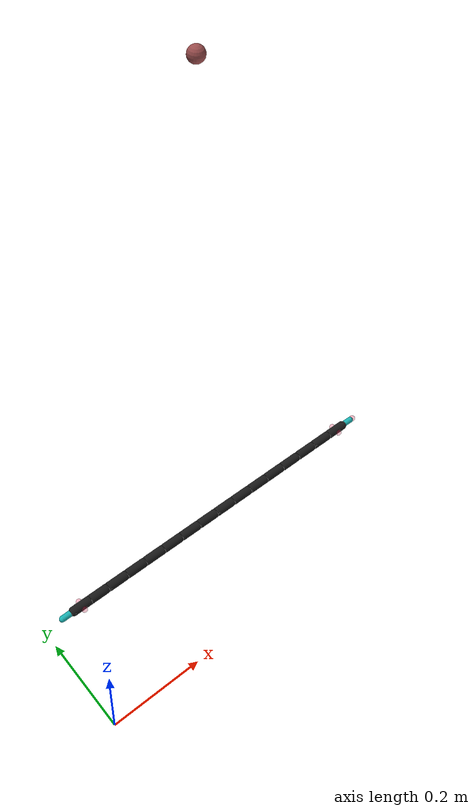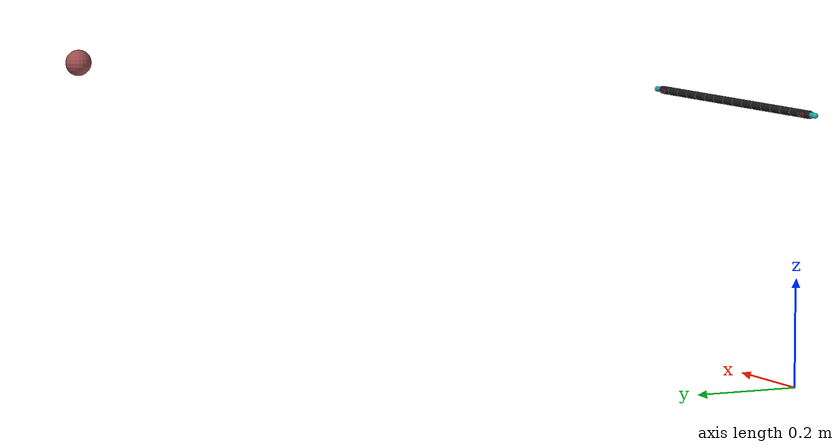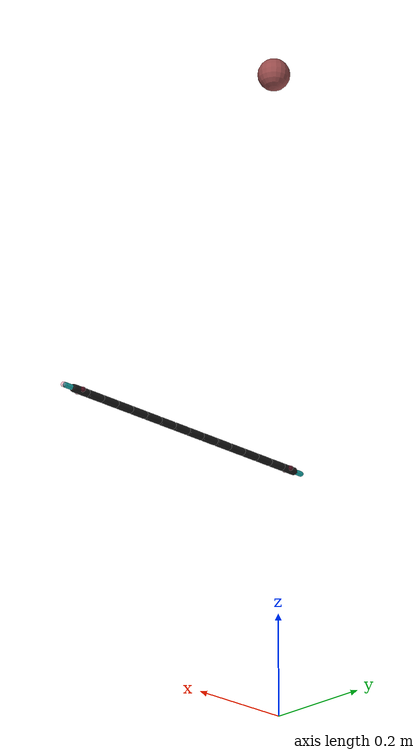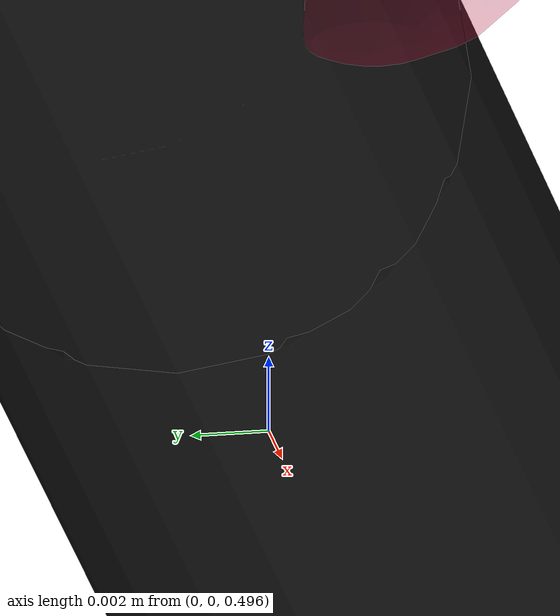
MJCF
<mujoco model="wire_insertion">
    <custom>
        <numeric data="0.4 0.25 0.21 1 0 0 0" name="wire1_initpos" />
        <!-- horizontal-->
        <numeric data="-0.2 -0.7 0.195 1 0 0 0" name="target1_initpos" />
        <!-- vertical-->
    </custom>

    <asset>
        <material name="table_mat" specular="0" shininess="0.5" reflectance="0" rgba="0.93 0.93 0.93 1"/>
        <!-- ceramic table texture and material-->
        <texture file="../textures/ceramic.png" type="cube" name="tex-ceramic"/>
        <material name="table_ceramic" reflectance="0.0" shininess="0.0" specular="0.2" texrepeat="1 1" texture="tex-ceramic" />
        <texture file="../textures/steel-scratched.png" type="cube" name="steel-metal"/>
        <material name="smetal" reflectance="1.0" shininess="1.0" specular="1.0" texrepeat="1 1" texture="steel-metal" texuniform="true"/>
        <texture file="../textures/brass-ambra.png" type="cube" name="brass-metal"/>
        <material name="bmetal"  reflectance="1.0" shininess="1.0" specular="1.0" texrepeat="1 1" texture="brass-metal" texuniform="true"/>
        <mesh file="table_lack_0825/table.stl" name="part4" scale="0.015 0.015 0.02" />
        <texture file="../textures/light-wood.png" name="tex-light-wood" type="2d" />
        <material name="pencil-wood" reflectance="0.5" texrepeat="20 20" texture="tex-light-wood" texuniform="true" />
        <texture file="../textures/red-wood.png" name="tex-red-wood" type="2d" />
        <material name="red-wood" reflectance="0.5" texrepeat="20 20" texture="tex-red-wood" texuniform="true" />
        <texture name="grid" type="2d" builtin="checker" rgb1=".1 .2 .3" rgb2=".2 .3 .4" width="300" height="300" mark="edge" markrgb=".2 .3 .4"/>
        <material name="self" rgba="0.1 0.1 0.1 1"/>
        <material name="self_default" rgba=".7 .5 .3 1"/>
        <material name="self_highlight" rgba="0 .5 .3 1"/>
        <material name="effector" rgba=".7 .4 .2 1"/>
        <material name="effector_default" rgba=".7 .4 .2 1"/>
        <material name="effector_highlight" rgba="0 .5 .3 1"/>
        <material name="decoration" rgba=".3 .5 .7 1"/>
        <material name="eye" rgba="0 .2 1 1"/>
        <material name="target" rgba=".6 .3 .3 1"/>
        <material name="target_default" rgba=".6 .3 .3 1"/>
        <material name="target_highlight" rgba=".6 .3 .3 .4"/>
        <material name="site" rgba=".5 .5 .5 .3"/>
    </asset>

    <default>
        <default class="swimmer">
            <joint type="hinge" pos="0 -0.015 0" axis="0 0 1" damping=".005" limited="true" solreflimit=".05 1" solimplimit="0 .8 .1" armature="1e-6"/>
            <default class="collision">
                <geom type="box" size="0.001 0.015 0.0075" quat="0.707107 0.707107 0 0" rgba="0 0 0 0"/>
            </default>
            <default class="visual">
                <geom type="capsule" size="0.0075" quat="0.707107 0.707107 0 0" fromto="0 -0.015 0 0 0.015 0" material="self"/>
            </default>
            <site size=".005" rgba="0.2941 0.9019 0.0980 0.3" type="sphere"/>
        </default>
        <default class="panda">
            <material specular="0.5" shininess="0.25"/>
            <default class="robot_visual">
                <geom type="mesh" contype="0" conaffinity="0" group="1"/>
            </default>
            <default class="robot_collision">
                <geom type="mesh" group="0"/>
                <default class="fingertip_pad_collision_1">
                <geom type="box" size="0.0085 0.004 0.0085" pos="0 0.0055 0.0445"/>
                </default>
                <default class="fingertip_pad_collision_2">
                <geom type="box" size="0.003 0.002 0.003" pos="0.0055 0.002 0.05"/>
                </default>
                <default class="fingertip_pad_collision_3">
                <geom type="box" size="0.003 0.002 0.003" pos="-0.0055 0.002 0.05"/>
                </default>
                <default class="fingertip_pad_collision_4">
                <geom type="box" size="0.003 0.002 0.0035" pos="0.0055 0.002 0.0395"/>
                </default>
                <default class="fingertip_pad_collision_5">
                <geom type="box" size="0.003 0.002 0.0035" pos="-0.0055 0.002 0.0395"/>
                </default>
            </default>
        </default>

    </default>

     <equality>
        <connect active="false" body1="wire1" body2="target1" anchor="0.10514361 0.19101518 0.10821976" solimp="1 1 0.5" solref="0.01 0.3" />
    </equality>

    <compiler meshdir=""/>
    <size njmax="8000" nconmax="4000"/>

    <worldbody>
        <!-- include a wire -->
           -->

        <!-- Wire -->

        <body name="wire1" pos="0.5 0 .5" quat="0.707107 0 0 0.707107" childclass="swimmer">
            <inertial pos="0.055 0 0" quat="0.707107 0 0.707107 0" mass="0.00274889" diaginertia="2.97797e-07 2.97797e-07 3.43612e-08"/>
            <light name="light_1" diffuse=".8 .8 .8" pos="0 0 1.5"/>
            <geom name="wire1_I1_geom" conaffinity="0" contype="0" pos="0 -0.025 0" quat="0.707107 0.707107 0 0" size="0.005 0.01" rgba="0.1 0.7 0.7 1" group="1" type="capsule"/>--&gt;
            <geom name="noviz_collision_wire1_I1" condim="1" pos="0 -0.025 0" quat="0.707107 0.707107 0 0" size="0.005 0.01" type="capsule" rgba="0 0 0 0" group="0" solref="0.001 1"/>
            <geom name="wire1_G0_geom" class="visual" group="1"/>
            <geom name="noviz_collision_wire1_G0" class="collision" group="0"/>
            <site group="1" name="wire1_ltgt_site0" pos="0.0075 0 0" rgba="0.9019 0.0980 0.2941 0.3" size="0.005 0.005 0.005" type="sphere"/>
            <site group="1" name="wire1_rtgt_site0" pos="-0.0075 0 0" rgba="0.9019 0.0980 0.2941 0.3" size="0.005 0.005 0.005" type="sphere"/>
            <!--site for hole-->
            <site group="0" name="wire-hole,conn_site1" pos="0 -0.04 0" quat="0.707107 0 0.707107 0" rgba="0.9019 0.0980 0.2941 0.3" size="0.005"/>
            <!--site for connection-->
            <site name="wire1_horizontal_radius_site" pos="0.0 0 0" rgba="0.9019 0.0980 0.2941 0.3" size="0.0075"/>
            <site name="head"/>
            <body name="composite_B0" pos="0 0.035625 0"><inertial pos="0 0 0" quat="0.707107 0.707107 0 0" mass="0.0125664" diaginertia="1.98968e-06 1.98968e-06 6.28319e-07"/><geom class="visual" name="B0_G1_geom" group="1"/><geom class="collision" name="noviz_collision_B0_G1" group="0"/><site name="site_0"/><joint name="J0_0" range="-120.0 120.0" group="3"/><joint name="J1_0" axis="1 0 0" range="-120.0 120.0" group="3"/><body name="composite_B1" pos="0 0.035625 0"><inertial pos="0 0 0" quat="0.707107 0.707107 0 0" mass="0.0125664" diaginertia="1.98968e-06 1.98968e-06 6.28319e-07"/><geom class="visual" name="B1_G1_geom" group="1"/><geom class="collision" name="noviz_collision_B1_G1" group="0"/><site name="site_1"/><joint name="J0_1" range="-120.0 120.0" group="3"/><joint name="J1_1" axis="1 0 0" range="-120.0 120.0" group="3"/><body name="composite_B2" pos="0 0.035625 0"><inertial pos="0 0 0" quat="0.707107 0.707107 0 0" mass="0.0125664" diaginertia="1.98968e-06 1.98968e-06 6.28319e-07"/><geom class="visual" name="B2_G1_geom" group="1"/><geom class="collision" name="noviz_collision_B2_G1" group="0"/><site name="site_2"/><joint name="J0_2" range="-120.0 120.0" group="3"/><joint name="J1_2" axis="1 0 0" range="-120.0 120.0" group="3"/><body name="composite_B3" pos="0 0.035625 0"><inertial pos="0 0 0" quat="0.707107 0.707107 0 0" mass="0.0125664" diaginertia="1.98968e-06 1.98968e-06 6.28319e-07"/><geom class="visual" name="B3_G1_geom" group="1"/><geom class="collision" name="noviz_collision_B3_G1" group="0"/><site name="site_3"/><joint name="J0_3" range="-120.0 120.0" group="3"/><joint name="J1_3" axis="1 0 0" range="-120.0 120.0" group="3"/><body name="composite_B4" pos="0 0.035625 0"><inertial pos="0 0 0" quat="0.707107 0.707107 0 0" mass="0.0125664" diaginertia="1.98968e-06 1.98968e-06 6.28319e-07"/><geom class="visual" name="B4_G1_geom" group="1"/><geom class="collision" name="noviz_collision_B4_G1" group="0"/><site name="site_4"/><joint name="J0_4" range="-120.0 120.0" group="3"/><joint name="J1_4" axis="1 0 0" range="-120.0 120.0" group="3"/><body name="composite_B5" pos="0 0.035625 0"><inertial pos="0 0 0" quat="0.707107 0.707107 0 0" mass="0.0125664" diaginertia="1.98968e-06 1.98968e-06 6.28319e-07"/><geom class="visual" name="B5_G1_geom" group="1"/><geom class="collision" name="noviz_collision_B5_G1" group="0"/><site name="site_5"/><joint name="J0_5" range="-120.0 120.0" group="3"/><joint name="J1_5" axis="1 0 0" range="-120.0 120.0" group="3"/><body name="composite_B6" pos="0 0.035625 0"><inertial pos="0 0 0" quat="0.707107 0.707107 0 0" mass="0.0125664" diaginertia="1.98968e-06 1.98968e-06 6.28319e-07"/><geom class="visual" name="B6_G1_geom" group="1"/><geom class="collision" name="noviz_collision_B6_G1" group="0"/><site name="site_6"/><joint name="J0_6" range="-120.0 120.0" group="3"/><joint name="J1_6" axis="1 0 0" range="-120.0 120.0" group="3"/><body name="composite_B7" pos="0 0.035625 0"><inertial pos="0 0 0" quat="0.707107 0.707107 0 0" mass="0.0125664" diaginertia="1.98968e-06 1.98968e-06 6.28319e-07"/><geom class="visual" name="B7_G1_geom" group="1"/><geom class="collision" name="noviz_collision_B7_G1" group="0"/><site name="site_7"/><joint name="J0_7" range="-120.0 120.0" group="3"/><joint name="J1_7" axis="1 0 0" range="-120.0 120.0" group="3"/><body name="composite_B8" pos="0 0.035625 0"><inertial pos="0 0 0" quat="0.707107 0.707107 0 0" mass="0.0125664" diaginertia="1.98968e-06 1.98968e-06 6.28319e-07"/><geom class="visual" name="B8_G1_geom" group="1"/><geom class="collision" name="noviz_collision_B8_G1" group="0"/><site name="site_8"/><joint name="J0_8" range="-120.0 120.0" group="3"/><joint name="J1_8" axis="1 0 0" range="-120.0 120.0" group="3"/><body name="composite_B9" pos="0 0.035625 0"><inertial pos="0 0 0" quat="0.707107 0.707107 0 0" mass="0.0125664" diaginertia="1.98968e-06 1.98968e-06 6.28319e-07"/><geom class="visual" name="B9_G1_geom" group="1"/><geom class="collision" name="noviz_collision_B9_G1" group="0"/><site name="site_9"/><joint name="J0_9" range="-120.0 120.0" group="3"/><joint name="J1_9" axis="1 0 0" range="-120.0 120.0" group="3"/><body name="composite_B10" pos="0 0.035625 0"><inertial pos="0 0 0" quat="0.707107 0.707107 0 0" mass="0.0125664" diaginertia="1.98968e-06 1.98968e-06 6.28319e-07"/><geom class="visual" name="B10_G1_geom" group="1"/><geom class="collision" name="noviz_collision_B10_G1" group="0"/><site name="site_10"/><joint name="J0_10" range="-120.0 120.0" group="3"/><joint name="J1_10" axis="1 0 0" range="-120.0 120.0" group="3"/><body name="composite_B11" pos="0 0.035625 0"><inertial pos="0 0 0" quat="0.707107 0.707107 0 0" mass="0.0125664" diaginertia="1.98968e-06 1.98968e-06 6.28319e-07"/><geom class="visual" name="B11_G1_geom" group="1"/><geom class="collision" name="noviz_collision_B11_G1" group="0"/><site name="site_11"/><joint name="J0_11" range="-120.0 120.0" group="3"/><joint name="J1_11" axis="1 0 0" range="-120.0 120.0" group="3"/><body name="composite_B12" pos="0 0.035625 0"><inertial pos="0 0 0" quat="0.707107 0.707107 0 0" mass="0.0125664" diaginertia="1.98968e-06 1.98968e-06 6.28319e-07"/><geom class="visual" name="B12_G1_geom" group="1"/><geom class="collision" name="noviz_collision_B12_G1" group="0"/><site name="site_12"/><joint name="J0_12" range="-120.0 120.0" group="3"/><joint name="J1_12" axis="1 0 0" range="-120.0 120.0" group="3"/><body name="composite_B13" pos="0 0.035625 0"><inertial pos="0 0 0" quat="0.707107 0.707107 0 0" mass="0.0125664" diaginertia="1.98968e-06 1.98968e-06 6.28319e-07"/><geom class="visual" name="B13_G1_geom" group="1"/><geom class="collision" name="noviz_collision_B13_G1" group="0"/><site name="site_13"/><joint name="J0_13" range="-120.0 120.0" group="3"/><joint name="J1_13" axis="1 0 0" range="-120.0 120.0" group="3"/><body name="composite_wire2" pos="0 0.03 0"><inertial pos="0.0 0 0" quat="0.707107 0.707107 0 0" mass="0.00274889" diaginertia="1.98968e-06 1.98968e-06 6.28319e-07"/><geom class="visual" name="wire2_G0_geom" group="1"/><geom class="collision" name="noviz_collision_wire2_G0" group="0"/><geom name="wire2_I2_geom" conaffinity="0" contype="0" pos="0 0.025 0" quat="0.707107 0.707107 0 0" size="0.005 0.01" rgba="0.1 0.7 0.7 1" group="1" type="capsule"/><geom name="noviz_collision_wire2_I2" condim="1" pos="0 0.025 0" quat="0.707107 0.707107 0 0" size="0.005 0.01" rgba="0 0 0 0" group="0" type="capsule" solref="0.001 1"/><site name="wire2_ltgt_site0" pos="0.0075 0.0 0 " rgba="0.9019 0.0980 0.2941 0.3" size="0.005 0.005 0.005" type="sphere"/><site name="wire2_rtgt_site0" pos="-0.0075 0.0 0 " rgba="0.9019 0.0980 0.2941 0.3" size="0.005 0.005 0.005" type="sphere"/><site name="wire2_horizontal_radius_site" pos="0.0 0 0" rgba="0.9019 0.0980 0.2941 0.3" size="0.0075"/><joint name="J0_wire2" range="-120.0 120.0" group="3"/><joint name="J1_wire2" axis="1 0 0" range="-120.0 120.0" group="3"/></body></body></body></body></body></body></body></body></body></body></body></body></body></body></body></body>

        <!-- target -->
        <body name="target1" pos="0 0 .5" quat="1 0 0 0">
            <geom name="target1_geom" conaffinity="0" contype="0" pos="1 1 .05" size="0.025" group="1" material="target" type="sphere"/>
            <site name="hole-wire,conn_site1" rgba="0.9019 0.0980 0.2941 0.3" size="0.005"/>
        </body>

    </worldbody>

</mujoco>
